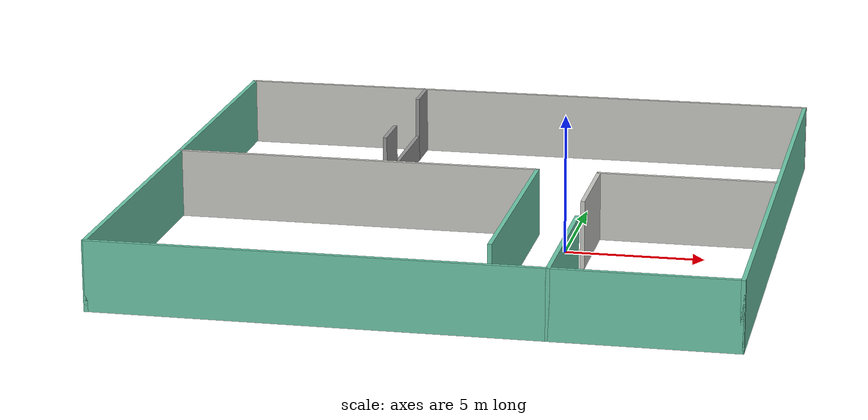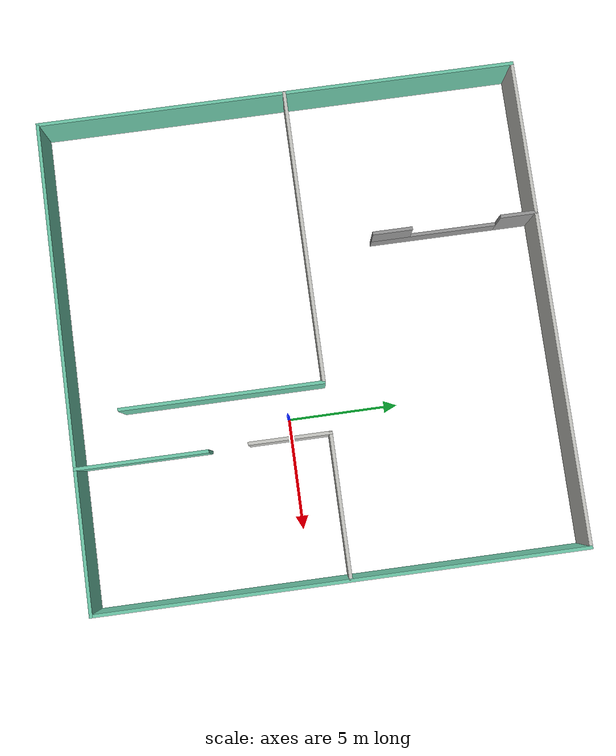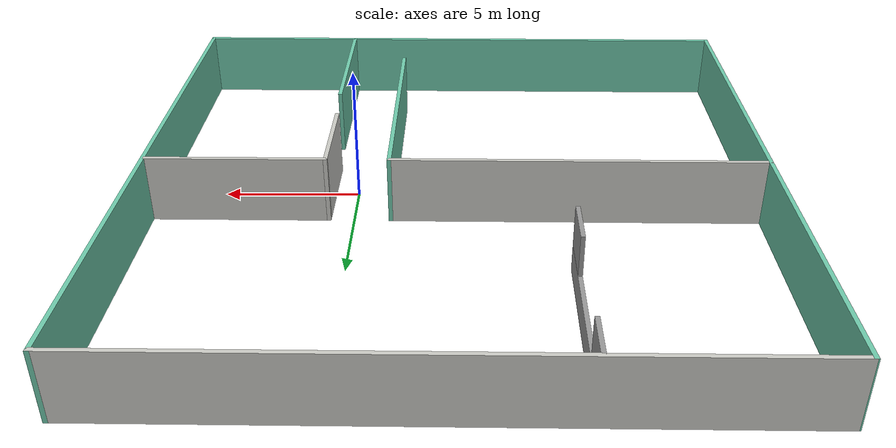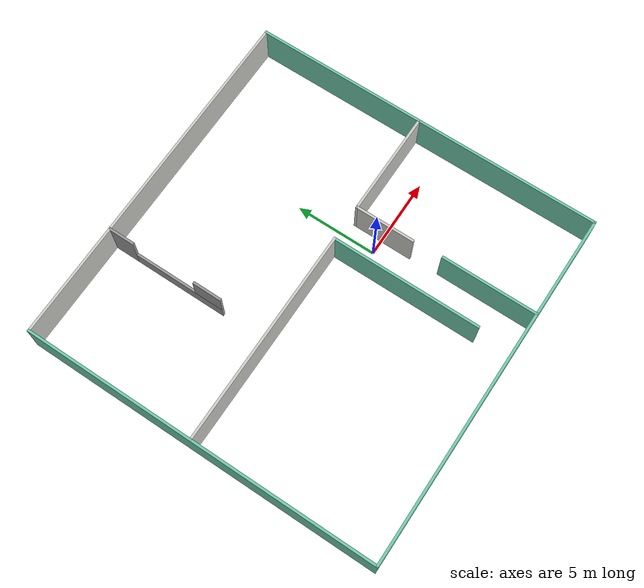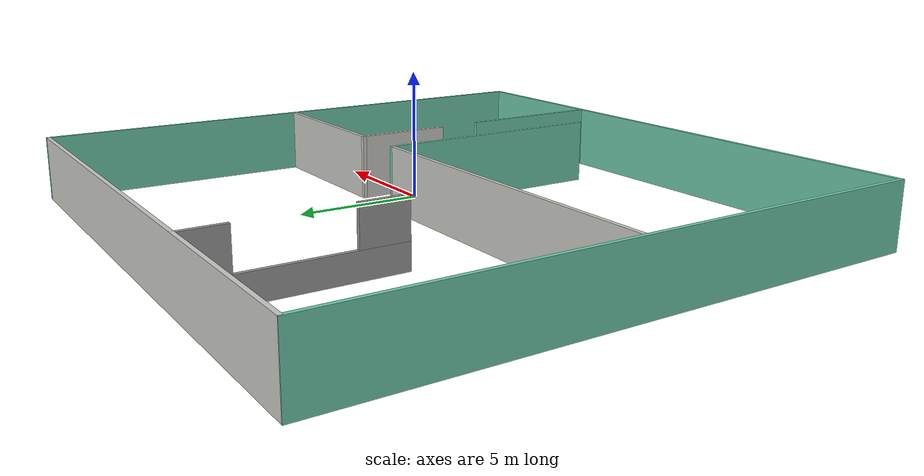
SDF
<?xml version='1.0'?>
<sdf version='1.6'>
  <model name='mybulding2'>
    <pose frame=''>-3.65685 1.351 0 0 -0 0</pose>
    <link name='Wall_12'>
      <collision name='Wall_12_Collision'>
        <geometry>
          <box>
            <size>22.1614 0.15 2.5</size>
          </box>
        </geometry>
        <pose frame=''>0 0 1.25 0 -0 0</pose>
      </collision>
      <visual name='Wall_12_Visual'>
        <pose frame=''>0 0 1.25 0 -0 0</pose>
        <geometry>
          <box>
            <size>22.1614 0.15 2.5</size>
          </box>
        </geometry>
        <material>
          <script>
            <uri>file://media/materials/scripts/gazebo.material</uri>
            <name>Gazebo/CeilingTiled</name>
          </script>
          <ambient>1 1 1 1</ambient>
        </material>
        <meta>
          <layer>0</layer>
        </meta>
      </visual>
      <pose frame=''>0.022152 10.925 0 0 -0 3.14159</pose>
    </link>
    <link name='Wall_13'>
      <collision name='Wall_13_Collision'>
        <geometry>
          <box>
            <size>22 0.15 2.5</size>
          </box>
        </geometry>
        <pose frame=''>0 0 1.25 0 -0 0</pose>
      </collision>
      <visual name='Wall_13_Visual'>
        <pose frame=''>0 0 1.25 0 -0 0</pose>
        <geometry>
          <box>
            <size>22 0.15 2.5</size>
          </box>
        </geometry>
        <material>
          <script>
            <uri>file://media/materials/scripts/gazebo.material</uri>
            <name>Gazebo/Grey</name>
          </script>
          <ambient>0.435294 0.796078 0.67451 1</ambient>
        </material>
        <meta>
          <layer>0</layer>
        </meta>
      </visual>
      <pose frame=''>-11.0278 0 0 0 0 -1.5708</pose>
    </link>
    <link name='Wall_15'>
      <collision name='Wall_15_Collision'>
        <geometry>
          <box>
            <size>22.1614 0.15 2.5</size>
          </box>
        </geometry>
        <pose frame=''>0 0 1.25 0 -0 0</pose>
      </collision>
      <visual name='Wall_15_Visual'>
        <pose frame=''>0 0 1.25 0 -0 0</pose>
        <geometry>
          <box>
            <size>22.1614 0.15 2.5</size>
          </box>
        </geometry>
        <material>
          <script>
            <uri>file://media/materials/scripts/gazebo.material</uri>
            <name>Gazebo/Grey</name>
          </script>
          <ambient>0.435294 0.796078 0.67451 1</ambient>
        </material>
        <meta>
          <layer>0</layer>
        </meta>
      </visual>
      <pose frame=''>0.022152 -10.925 0 0 -0 0</pose>
    </link>
    <link name='Wall_16'>
      <collision name='Wall_16_Collision'>
        <geometry>
          <box>
            <size>22 0.15 2.5</size>
          </box>
        </geometry>
        <pose frame=''>0 0 1.25 0 -0 0</pose>
      </collision>
      <visual name='Wall_16_Visual'>
        <pose frame=''>0 0 1.25 0 -0 0</pose>
        <geometry>
          <box>
            <size>22 0.15 2.5</size>
          </box>
        </geometry>
        <material>
          <script>
            <uri>file://media/materials/scripts/gazebo.material</uri>
            <name>Gazebo/Grey</name>
          </script>
          <ambient>0.435294 0.796078 0.67451 1</ambient>
        </material>
        <meta>
          <layer>0</layer>
        </meta>
      </visual>
      <pose frame=''>11.0278 0 0 0 -0 1.5708</pose>
    </link>
    <link name='Wall_18'>
      <collision name='Wall_18_Collision'>
        <geometry>
          <box>
            <size>13.5 0.15 2.5</size>
          </box>
        </geometry>
        <pose frame=''>0 0 1.25 0 -0 0</pose>
      </collision>
      <visual name='Wall_18_Visual'>
        <pose frame=''>0 0 1.25 0 -0 0</pose>
        <geometry>
          <box>
            <size>13.5 0.15 2.5</size>
          </box>
        </geometry>
        <material>
          <script>
            <uri>file://media/materials/scripts/gazebo.material</uri>
            <name>Gazebo/CeilingTiled</name>
          </script>
          <ambient>1 1 1 1</ambient>
        </material>
        <meta>
          <layer>0</layer>
        </meta>
      </visual>
      <pose frame=''>-4.33745 0.401695 0 0 -0 0</pose>
    </link>
    <link name='Wall_19'>
      <collision name='Wall_19_Collision'>
        <geometry>
          <box>
            <size>9.25 0.15 2.5</size>
          </box>
        </geometry>
        <pose frame=''>0 0 1.25 0 -0 0</pose>
      </collision>
      <visual name='Wall_19_Visual'>
        <pose frame=''>0 0 1.25 0 -0 0</pose>
        <geometry>
          <box>
            <size>9.25 0.15 2.5</size>
          </box>
        </geometry>
        <material>
          <script>
            <uri>file://media/materials/scripts/gazebo.material</uri>
            <name>Gazebo/Grey</name>
          </script>
          <ambient>0.435294 0.796078 0.67451 1</ambient>
        </material>
        <meta>
          <layer>0</layer>
        </meta>
      </visual>
      <pose frame=''>2.33755 -4.1483 0 0 0 -1.5708</pose>
    </link>
    <link name='Wall_21'>
      <collision name='Wall_21_Collision'>
        <geometry>
          <box>
            <size>6.5 0.15 2.5</size>
          </box>
        </geometry>
        <pose frame=''>0 0 1.25 0 -0 0</pose>
      </collision>
      <visual name='Wall_21_Visual'>
        <pose frame=''>0 0 1.25 0 -0 0</pose>
        <geometry>
          <box>
            <size>6.5 0.15 2.5</size>
          </box>
        </geometry>
        <material>
          <script>
            <uri>file://media/materials/scripts/gazebo.material</uri>
            <name>Gazebo/CeilingTiled</name>
          </script>
          <ambient>1 1 1 1</ambient>
        </material>
        <meta>
          <layer>0</layer>
        </meta>
      </visual>
      <pose frame=''>7.75753 0.401695 0 0 -0 0</pose>
    </link>
    <link name='Wall_23'>
      <collision name='Wall_23_Collision'>
        <geometry>
          <box>
            <size>3.75 0.15 2.5</size>
          </box>
        </geometry>
        <pose frame=''>0 0 1.25 0 -0 0</pose>
      </collision>
      <visual name='Wall_23_Visual'>
        <pose frame=''>0 0 1.25 0 -0 0</pose>
        <geometry>
          <box>
            <size>3.75 0.15 2.5</size>
          </box>
        </geometry>
        <material>
          <script>
            <uri>file://media/materials/scripts/gazebo.material</uri>
            <name>Gazebo/CeilingTiled</name>
          </script>
          <ambient>1 1 1 1</ambient>
        </material>
        <meta>
          <layer>0</layer>
        </meta>
      </visual>
      <pose frame=''>4.58253 -1.3983 0 0 0 -1.5708</pose>
    </link>
    <link name='Wall_25'>
      <collision name='Wall_25_Collision'>
        <geometry>
          <box>
            <size>5.983 0.15 2.5</size>
          </box>
        </geometry>
        <pose frame=''>0 0 1.25 0 -0 0</pose>
      </collision>
      <visual name='Wall_25_Visual'>
        <pose frame=''>0 0 1.25 0 -0 0</pose>
        <geometry>
          <box>
            <size>5.983 0.15 2.5</size>
          </box>
        </geometry>
        <material>
          <script>
            <uri>file://media/materials/scripts/gazebo.material</uri>
            <name>Gazebo/Grey</name>
          </script>
          <ambient>0.435294 0.796078 0.67451 1</ambient>
        </material>
        <meta>
          <layer>0</layer>
        </meta>
      </visual>
      <pose frame=''>4.67085 -8.0085 0 0 0 -1.5708</pose>
    </link>
    <link name='Wall_27'>
      <pose frame=''>-4.00417 7.24214 0 0 0 -1.5708</pose>
      <visual name='Wall_27_Visual_0'>
        <pose frame=''>-2.90434 0 1.25 0 -0 0</pose>
        <geometry>
          <box>
            <size>1.69133 0.15 2.5</size>
          </box>
        </geometry>
        <material>
          <script>
            <uri>file://media/materials/scripts/gazebo.material</uri>
            <name>Gazebo/Grey</name>
          </script>
          <ambient>1 1 1 1</ambient>
        </material>
        <meta>
          <layer>0</layer>
        </meta>
      </visual>
      <collision name='Wall_27_Collision_0'>
        <geometry>
          <box>
            <size>1.69133 0.15 2.5</size>
          </box>
        </geometry>
        <pose frame=''>-2.90434 0 1.25 0 -0 0</pose>
      </collision>
      <visual name='Wall_27_Visual_1'>
        <pose frame=''>0.845665 0 0.5 0 -0 0</pose>
        <geometry>
          <box>
            <size>5.80867 0.15 1</size>
          </box>
        </geometry>
        <material>
          <script>
            <uri>file://media/materials/scripts/gazebo.material</uri>
            <name>Gazebo/Grey</name>
          </script>
          <ambient>1 1 1 1</ambient>
        </material>
        <meta>
          <layer>0</layer>
        </meta>
      </visual>
      <collision name='Wall_27_Collision_1'>
        <geometry>
          <box>
            <size>5.80867 0.15 1</size>
          </box>
        </geometry>
        <pose frame=''>0.845665 0 0.5 0 -0 0</pose>
      </collision>
      <visual name='Wall_27_Visual_2'>
        <pose frame=''>2.84566 0 1.75 0 -0 0</pose>
        <geometry>
          <box>
            <size>1.80867 0.15 1.5</size>
          </box>
        </geometry>
        <material>
          <script>
            <uri>file://media/materials/scripts/gazebo.material</uri>
            <name>Gazebo/Grey</name>
          </script>
          <ambient>1 1 1 1</ambient>
        </material>
        <meta>
          <layer>0</layer>
        </meta>
      </visual>
      <collision name='Wall_27_Collision_2'>
        <geometry>
          <box>
            <size>1.80867 0.15 1.5</size>
          </box>
        </geometry>
        <pose frame=''>2.84566 0 1.75 0 -0 0</pose>
      </collision>
    </link>
    <static>1</static>
  </model>
</sdf>
